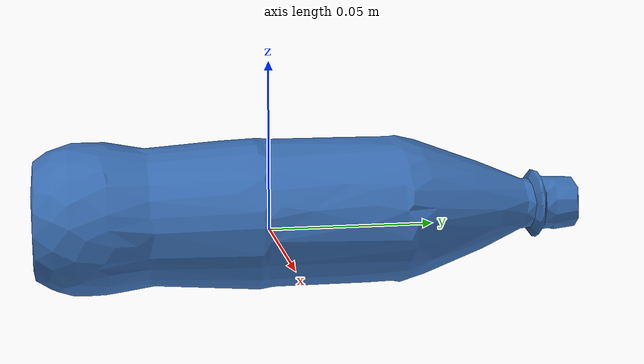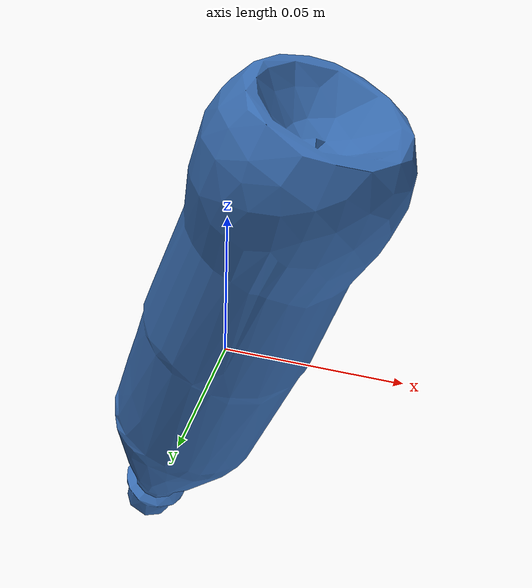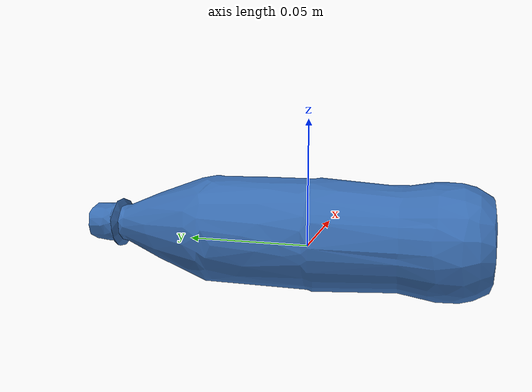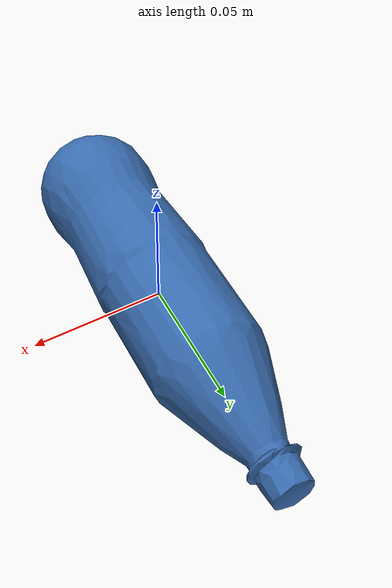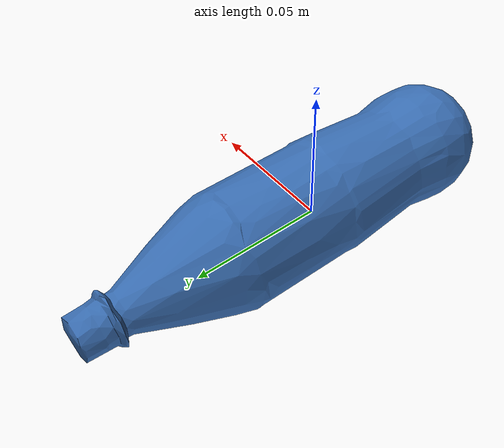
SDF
<sdf version="1.6">
  <model name="bottle3_4">
    <link name="link">
      <pose frame="">-0 0 0.005 0 -0 0</pose>
      <inertial>
        <mass>0.5</mass>
        <inertia>
          <ixx>0.0011977609041666664</ixx>
          <ixy>0</ixy>
          <ixz>0</ixz>
          <iyy>0.0011983822559999999</iyy>
          <iyz>0</iyz>
          <izz>0.00016812864816666663</izz>
        </inertia>
        <pose frame="">1.899999999999914e-05 0.013341999999999993 -0.00010899999999999868 1.57 0 3.14</pose>
      </inertial>
      <self_collide>0</self_collide>
      <kinematic>0</kinematic>
      <gravity>1</gravity>
      <visual name="visual">
        <geometry>
          <mesh>
            <uri>/home/zisu/simulator/siemens_challenge/sim_world/toolbox/bottle3_4.dae</uri>
          </mesh>
        </geometry>
        <pose frame="">0 0 0 0 -0 0</pose>
        <transparency>0</transparency>
        <cast_shadows>0</cast_shadows>
      </visual>
      <collision name="collision">
        <laser_retro>0</laser_retro>
        <max_contacts>10</max_contacts>
        <pose frame="">1.899999999999914e-05 0.013341999999999993 -0.00010899999999999868 1.57 0 3.14</pose>
        <geometry>
          <box>
            <size>0.045 0.044834 0.163512</size>
          </box>
        </geometry>
        <surface>
          <friction>
            <ode>
              <mu>1</mu>
              <mu2>1</mu2>
              <fdir1>0 0 0</fdir1>
              <slip1>0</slip1>
              <slip2>0</slip2>
            </ode>
            <torsional>
              <coefficient>1</coefficient>
              <patch_radius>0</patch_radius>
              <surface_radius>0.05</surface_radius>
              <use_patch_radius>0</use_patch_radius>
              <ode>
                <slip>0</slip>
              </ode>
            </torsional>
          </friction>
          <bounce>
            <restitution_coefficient>0</restitution_coefficient>
            <threshold>1e+06</threshold>
          </bounce>
          <contact>
            <collide_without_contact>0</collide_without_contact>
            <collide_without_contact_bitmask>1</collide_without_contact_bitmask>
            <collide_bitmask>1</collide_bitmask>
            <ode>
              <soft_cfm>0</soft_cfm>
              <soft_erp>0.2</soft_erp>
              <kp>100000</kp>
              <kd>1</kd>
              <max_vel>1</max_vel>
              <min_depth>0.001</min_depth>
            </ode>
            <bullet>
              <split_impulse>1</split_impulse>
              <split_impulse_penetration_threshold>-0.01</split_impulse_penetration_threshold>
              <soft_cfm>0</soft_cfm>
              <soft_erp>0.2</soft_erp>
              <kp>100000</kp>
              <kd>1</kd>
            </bullet>
          </contact>
        </surface>
      </collision>
    </link>
    <static>0</static>
    <allow_auto_disable>1</allow_auto_disable>
  </model>
</sdf>
